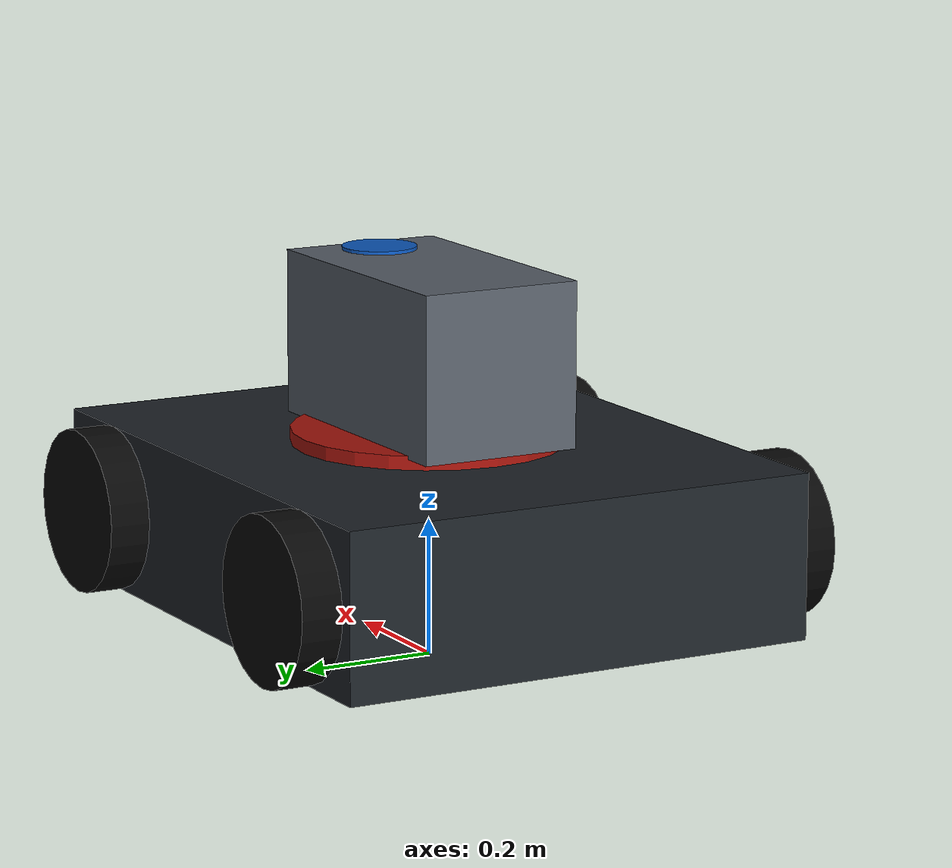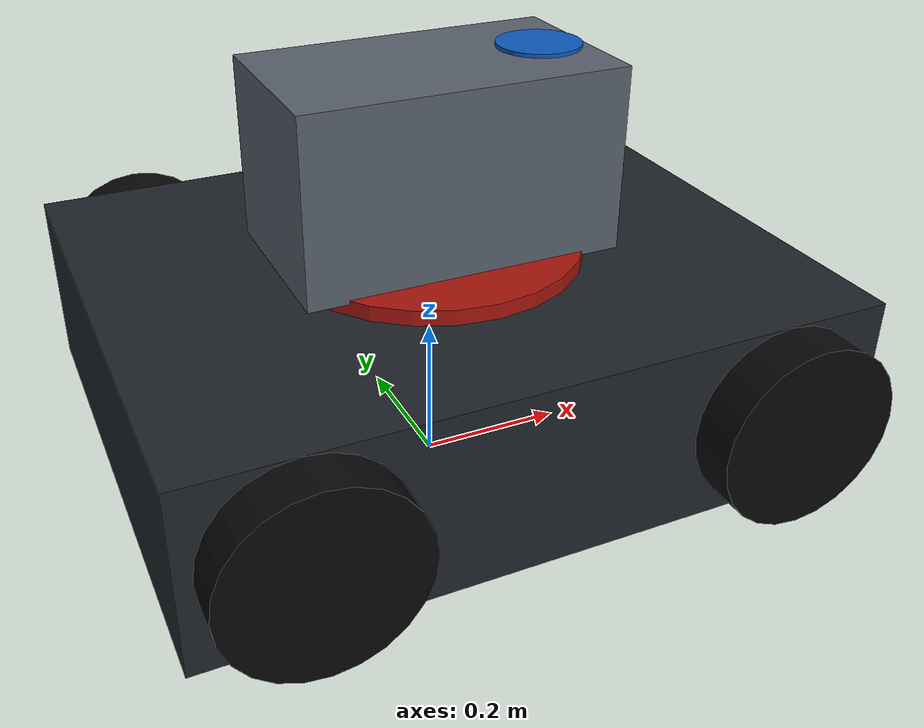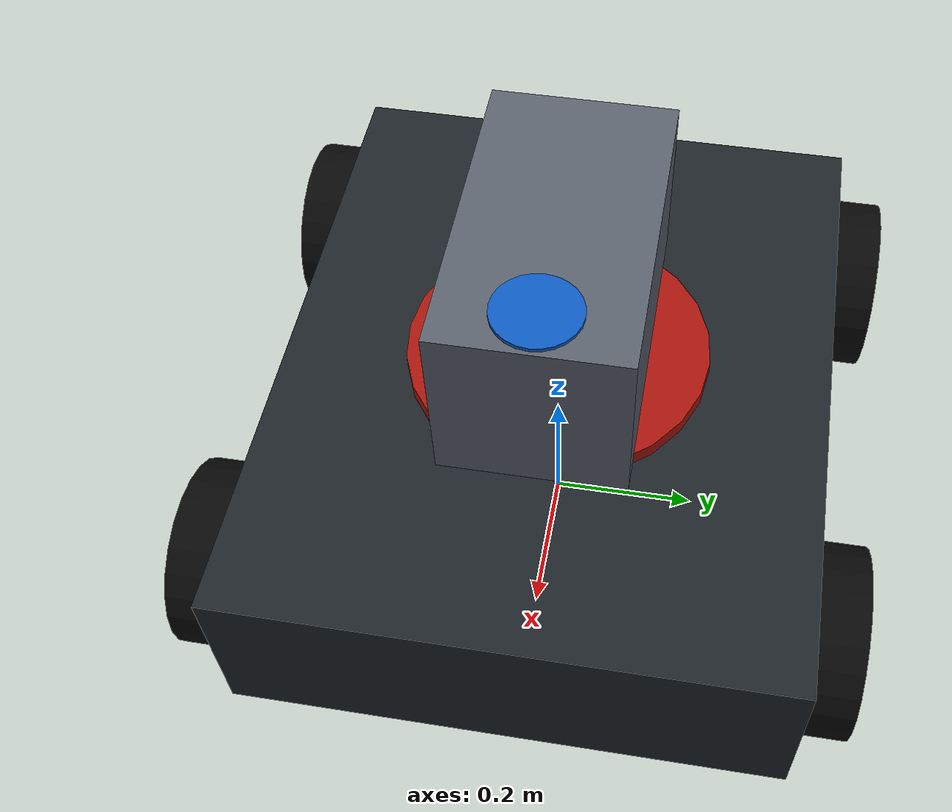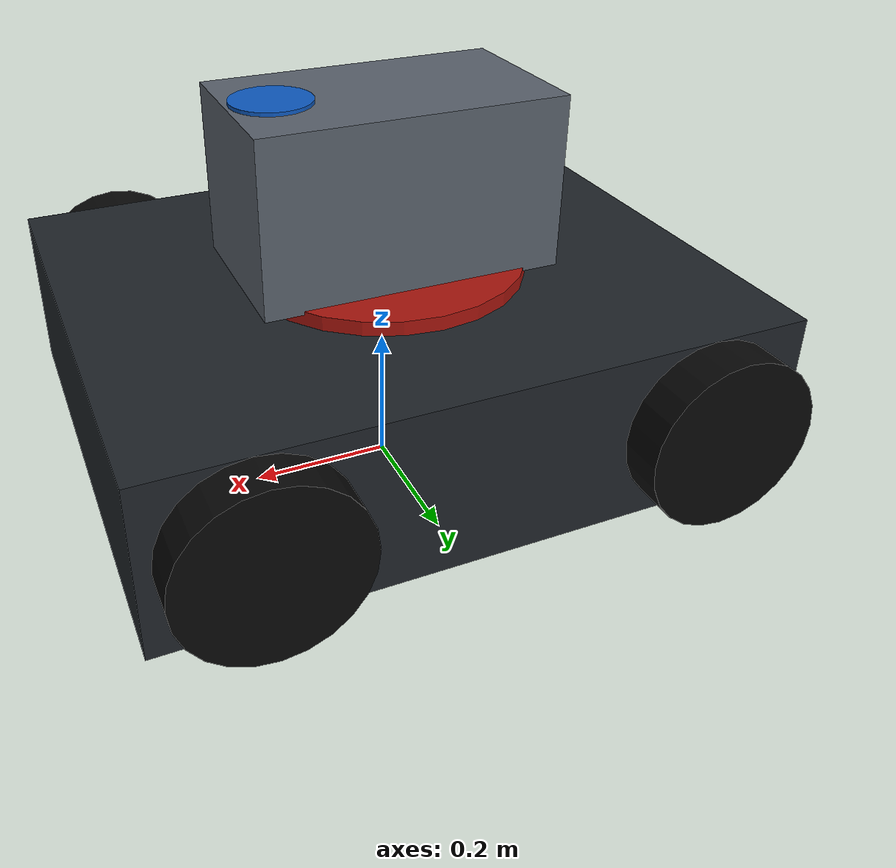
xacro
<?xml version="1.0"?>
<robot xmlns:xacro="http://www.ros.org/wiki/xacro" name="sentry">
  <!-- This model is the authoritative TF and RViz visual model for the real robot. -->
  <xacro:arg name="chassis_height" default="0.077"/>
  <xacro:arg name="gimbal_yaw_height" default="0.100"/>
  <xacro:arg name="gimbal_pitch_height" default="0.155"/>
  <xacro:arg name="lidar_x" default="0.150"/>
  <xacro:arg name="lidar_y" default="0.0"/>
  <xacro:arg name="lidar_z" default="0.400"/>
  <xacro:arg name="lidar_roll" default="-3.141592653589793"/>

  <link name="base_footprint"/>
  <link name="chassis">
    <visual>
      <origin xyz="0 0 0.12" rpy="0 0 0"/>
      <geometry><box size="0.88 0.72 0.24"/></geometry>
      <material name="chassis_black"><color rgba="0.12 0.14 0.16 1"/></material>
    </visual>
  </link>
  <link name="gimbal_yaw_odom"/>
  <link name="gimbal_pitch_odom"/>
  <link name="gimbal_yaw">
    <visual>
      <origin xyz="0 0 0.08" rpy="0 0 0"/>
      <geometry><cylinder radius="0.20" length="0.16"/></geometry>
      <material name="gimbal_red"><color rgba="0.65 0.08 0.05 1"/></material>
    </visual>
  </link>
  <link name="gimbal_pitch">
    <visual>
      <origin xyz="0 0 0.12" rpy="0 0 0"/>
      <geometry><box size="0.42 0.24 0.24"/></geometry>
      <material name="gimbal_gray"><color rgba="0.35 0.38 0.42 1"/></material>
    </visual>
  </link>
  <link name="front_mid360">
    <visual>
      <origin xyz="0 0 0.045" rpy="0 0 0"/>
      <geometry><cylinder radius="0.055" length="0.09"/></geometry>
      <material name="lidar_blue"><color rgba="0.05 0.35 0.75 1"/></material>
    </visual>
  </link>
  <link name="front_camera">
    <visual>
      <origin xyz="0 0 0.025" rpy="0 0 0"/>
      <geometry><box size="0.12 0.08 0.05"/></geometry>
      <material name="camera_black"><color rgba="0.03 0.03 0.03 1"/></material>
    </visual>
  </link>

  <link name="front_left_wheel">
    <visual><origin xyz="0 0 0" rpy="1.5708 0 0"/><geometry><cylinder radius="0.12" length="0.08"/></geometry><material name="wheel"><color rgba="0.03 0.03 0.03 1"/></material></visual>
  </link>
  <link name="front_right_wheel">
    <visual><origin xyz="0 0 0" rpy="1.5708 0 0"/><geometry><cylinder radius="0.12" length="0.08"/></geometry><material name="wheel"><color rgba="0.03 0.03 0.03 1"/></material></visual>
  </link>
  <link name="rear_left_wheel">
    <visual><origin xyz="0 0 0" rpy="1.5708 0 0"/><geometry><cylinder radius="0.12" length="0.08"/></geometry><material name="wheel"><color rgba="0.03 0.03 0.03 1"/></material></visual>
  </link>
  <link name="rear_right_wheel">
    <visual><origin xyz="0 0 0" rpy="1.5708 0 0"/><geometry><cylinder radius="0.12" length="0.08"/></geometry><material name="wheel"><color rgba="0.03 0.03 0.03 1"/></material></visual>
  </link>

  <joint name="base_to_chassis" type="fixed">
    <parent link="base_footprint"/><child link="chassis"/>
    <origin xyz="0 0 $(arg chassis_height)" rpy="0 0 0"/>
  </joint>
  <joint name="gimbal_yaw_odom_joint" type="fixed">
    <parent link="chassis"/><child link="gimbal_yaw_odom"/>
    <origin xyz="0 0 $(arg gimbal_yaw_height)" rpy="0 0 0"/>
  </joint>
  <joint name="gimbal_pitch_odom_joint" type="fixed">
    <parent link="gimbal_yaw_odom"/><child link="gimbal_pitch_odom"/>
    <origin xyz="0 0 $(arg gimbal_pitch_height)" rpy="0 0 0"/>
  </joint>
  <joint name="gimbal_yaw_joint" type="fixed">
    <parent link="gimbal_pitch_odom"/><child link="gimbal_yaw"/>
    <origin xyz="0 0 -$(arg gimbal_pitch_height)" rpy="0 0 0"/>
  </joint>
  <joint name="gimbal_pitch_joint" type="fixed">
    <parent link="gimbal_yaw"/><child link="gimbal_pitch"/>
    <origin xyz="0 0 $(arg gimbal_pitch_height)" rpy="0 0 0"/>
  </joint>
  <joint name="front_livox_joint" type="fixed">
    <parent link="gimbal_yaw"/><child link="front_mid360"/>
    <origin xyz="$(arg lidar_x) $(arg lidar_y) $(arg lidar_z)" rpy="$(arg lidar_roll) 0 0"/>
  </joint>
  <joint name="front_camera_joint" type="fixed">
    <parent link="gimbal_pitch"/><child link="front_camera"/>
    <origin xyz="0.100 0 0.045" rpy="0 0 0"/>
  </joint>

  <joint name="front_left_wheel_joint" type="fixed">
    <parent link="chassis"/><child link="front_left_wheel"/>
    <origin xyz="0.30 0.38 0.12" rpy="0 0 0"/>
  </joint>
  <joint name="front_right_wheel_joint" type="fixed">
    <parent link="chassis"/><child link="front_right_wheel"/>
    <origin xyz="0.30 -0.38 0.12" rpy="0 0 0"/>
  </joint>
  <joint name="rear_left_wheel_joint" type="fixed">
    <parent link="chassis"/><child link="rear_left_wheel"/>
    <origin xyz="-0.30 0.38 0.12" rpy="0 0 0"/>
  </joint>
  <joint name="rear_right_wheel_joint" type="fixed">
    <parent link="chassis"/><child link="rear_right_wheel"/>
    <origin xyz="-0.30 -0.38 0.12" rpy="0 0 0"/>
  </joint>
</robot>
